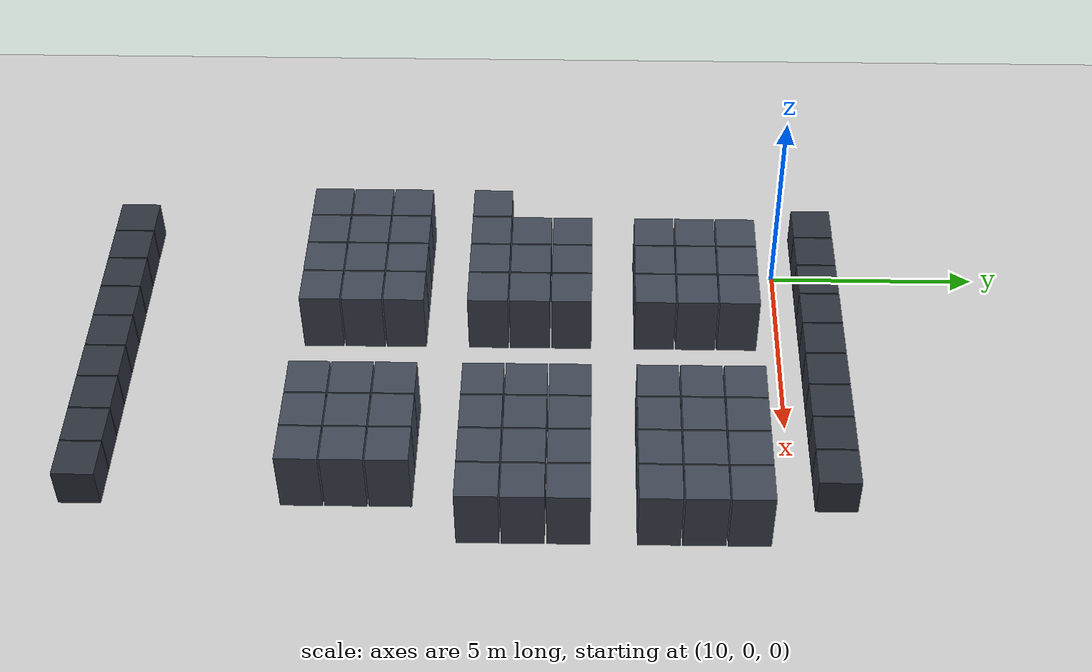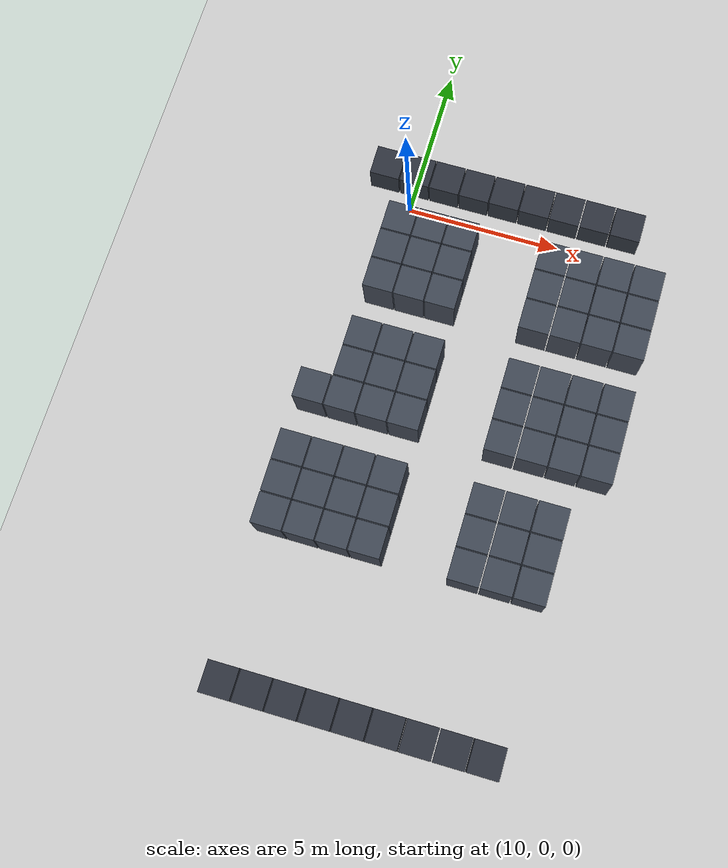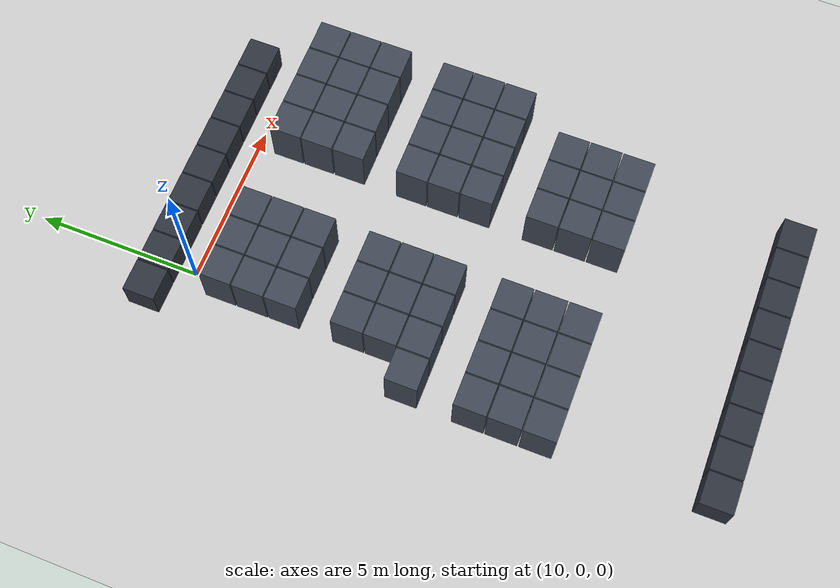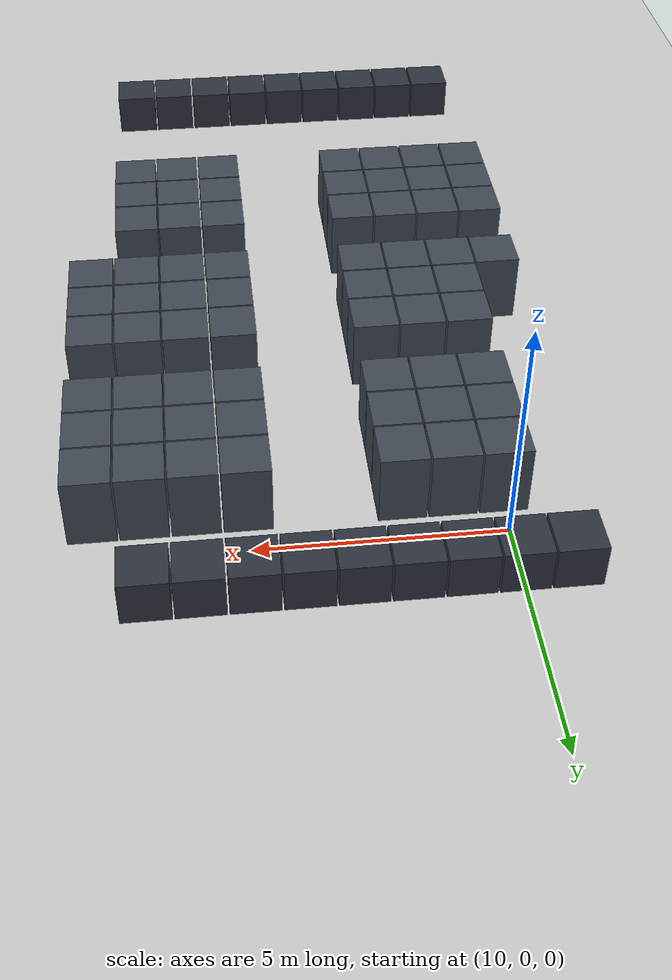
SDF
<sdf version="1.6">
 <world name="fleetx_warehouse">
  <include><uri>model://sun</uri></include>
  <include><uri>model://ground_plane</uri></include>
  <model name="shelf_10_1">
   <static>true</static>
   <pose>10.000 -1.000 0.800 0 0 0</pose>
   <link name="link">
    <collision name="collision"><geometry><box><size>0.960 0.960 1.600</size></box></geometry></collision>
    <visual name="visual">
     <geometry><box><size>0.960 0.960 1.600</size></box></geometry>
     <material><ambient>0.25 0.28 0.33 1</ambient><diffuse>0.25 0.28 0.33 1</diffuse></material>
    </visual>
   </link>
  </model>
  <model name="shelf_11_1">
   <static>true</static>
   <pose>11.000 -1.000 0.800 0 0 0</pose>
   <link name="link">
    <collision name="collision"><geometry><box><size>0.960 0.960 1.600</size></box></geometry></collision>
    <visual name="visual">
     <geometry><box><size>0.960 0.960 1.600</size></box></geometry>
     <material><ambient>0.25 0.28 0.33 1</ambient><diffuse>0.25 0.28 0.33 1</diffuse></material>
    </visual>
   </link>
  </model>
  <model name="shelf_12_1">
   <static>true</static>
   <pose>12.000 -1.000 0.800 0 0 0</pose>
   <link name="link">
    <collision name="collision"><geometry><box><size>0.960 0.960 1.600</size></box></geometry></collision>
    <visual name="visual">
     <geometry><box><size>0.960 0.960 1.600</size></box></geometry>
     <material><ambient>0.25 0.28 0.33 1</ambient><diffuse>0.25 0.28 0.33 1</diffuse></material>
    </visual>
   </link>
  </model>
  <model name="shelf_15_1">
   <static>true</static>
   <pose>15.000 -1.000 0.800 0 0 0</pose>
   <link name="link">
    <collision name="collision"><geometry><box><size>0.960 0.960 1.600</size></box></geometry></collision>
    <visual name="visual">
     <geometry><box><size>0.960 0.960 1.600</size></box></geometry>
     <material><ambient>0.25 0.28 0.33 1</ambient><diffuse>0.25 0.28 0.33 1</diffuse></material>
    </visual>
   </link>
  </model>
  <model name="shelf_16_1">
   <static>true</static>
   <pose>16.000 -1.000 0.800 0 0 0</pose>
   <link name="link">
    <collision name="collision"><geometry><box><size>0.960 0.960 1.600</size></box></geometry></collision>
    <visual name="visual">
     <geometry><box><size>0.960 0.960 1.600</size></box></geometry>
     <material><ambient>0.25 0.28 0.33 1</ambient><diffuse>0.25 0.28 0.33 1</diffuse></material>
    </visual>
   </link>
  </model>
  <model name="shelf_17_1">
   <static>true</static>
   <pose>17.000 -1.000 0.800 0 0 0</pose>
   <link name="link">
    <collision name="collision"><geometry><box><size>0.960 0.960 1.600</size></box></geometry></collision>
    <visual name="visual">
     <geometry><box><size>0.960 0.960 1.600</size></box></geometry>
     <material><ambient>0.25 0.28 0.33 1</ambient><diffuse>0.25 0.28 0.33 1</diffuse></material>
    </visual>
   </link>
  </model>
  <model name="shelf_18_1">
   <static>true</static>
   <pose>18.000 -1.000 0.800 0 0 0</pose>
   <link name="link">
    <collision name="collision"><geometry><box><size>0.960 0.960 1.600</size></box></geometry></collision>
    <visual name="visual">
     <geometry><box><size>0.960 0.960 1.600</size></box></geometry>
     <material><ambient>0.25 0.28 0.33 1</ambient><diffuse>0.25 0.28 0.33 1</diffuse></material>
    </visual>
   </link>
  </model>
  <model name="shelf_10_2">
   <static>true</static>
   <pose>10.000 -2.000 0.800 0 0 0</pose>
   <link name="link">
    <collision name="collision"><geometry><box><size>0.960 0.960 1.600</size></box></geometry></collision>
    <visual name="visual">
     <geometry><box><size>0.960 0.960 1.600</size></box></geometry>
     <material><ambient>0.25 0.28 0.33 1</ambient><diffuse>0.25 0.28 0.33 1</diffuse></material>
    </visual>
   </link>
  </model>
  <model name="shelf_11_2">
   <static>true</static>
   <pose>11.000 -2.000 0.800 0 0 0</pose>
   <link name="link">
    <collision name="collision"><geometry><box><size>0.960 0.960 1.600</size></box></geometry></collision>
    <visual name="visual">
     <geometry><box><size>0.960 0.960 1.600</size></box></geometry>
     <material><ambient>0.25 0.28 0.33 1</ambient><diffuse>0.25 0.28 0.33 1</diffuse></material>
    </visual>
   </link>
  </model>
  <model name="shelf_12_2">
   <static>true</static>
   <pose>12.000 -2.000 0.800 0 0 0</pose>
   <link name="link">
    <collision name="collision"><geometry><box><size>0.960 0.960 1.600</size></box></geometry></collision>
    <visual name="visual">
     <geometry><box><size>0.960 0.960 1.600</size></box></geometry>
     <material><ambient>0.25 0.28 0.33 1</ambient><diffuse>0.25 0.28 0.33 1</diffuse></material>
    </visual>
   </link>
  </model>
  <model name="shelf_15_2">
   <static>true</static>
   <pose>15.000 -2.000 0.800 0 0 0</pose>
   <link name="link">
    <collision name="collision"><geometry><box><size>0.960 0.960 1.600</size></box></geometry></collision>
    <visual name="visual">
     <geometry><box><size>0.960 0.960 1.600</size></box></geometry>
     <material><ambient>0.25 0.28 0.33 1</ambient><diffuse>0.25 0.28 0.33 1</diffuse></material>
    </visual>
   </link>
  </model>
  <model name="shelf_16_2">
   <static>true</static>
   <pose>16.000 -2.000 0.800 0 0 0</pose>
   <link name="link">
    <collision name="collision"><geometry><box><size>0.960 0.960 1.600</size></box></geometry></collision>
    <visual name="visual">
     <geometry><box><size>0.960 0.960 1.600</size></box></geometry>
     <material><ambient>0.25 0.28 0.33 1</ambient><diffuse>0.25 0.28 0.33 1</diffuse></material>
    </visual>
   </link>
  </model>
  <model name="shelf_17_2">
   <static>true</static>
   <pose>17.000 -2.000 0.800 0 0 0</pose>
   <link name="link">
    <collision name="collision"><geometry><box><size>0.960 0.960 1.600</size></box></geometry></collision>
    <visual name="visual">
     <geometry><box><size>0.960 0.960 1.600</size></box></geometry>
     <material><ambient>0.25 0.28 0.33 1</ambient><diffuse>0.25 0.28 0.33 1</diffuse></material>
    </visual>
   </link>
  </model>
  <model name="shelf_18_2">
   <static>true</static>
   <pose>18.000 -2.000 0.800 0 0 0</pose>
   <link name="link">
    <collision name="collision"><geometry><box><size>0.960 0.960 1.600</size></box></geometry></collision>
    <visual name="visual">
     <geometry><box><size>0.960 0.960 1.600</size></box></geometry>
     <material><ambient>0.25 0.28 0.33 1</ambient><diffuse>0.25 0.28 0.33 1</diffuse></material>
    </visual>
   </link>
  </model>
  <model name="shelf_10_3">
   <static>true</static>
   <pose>10.000 -3.000 0.800 0 0 0</pose>
   <link name="link">
    <collision name="collision"><geometry><box><size>0.960 0.960 1.600</size></box></geometry></collision>
    <visual name="visual">
     <geometry><box><size>0.960 0.960 1.600</size></box></geometry>
     <material><ambient>0.25 0.28 0.33 1</ambient><diffuse>0.25 0.28 0.33 1</diffuse></material>
    </visual>
   </link>
  </model>
  <model name="shelf_11_3">
   <static>true</static>
   <pose>11.000 -3.000 0.800 0 0 0</pose>
   <link name="link">
    <collision name="collision"><geometry><box><size>0.960 0.960 1.600</size></box></geometry></collision>
    <visual name="visual">
     <geometry><box><size>0.960 0.960 1.600</size></box></geometry>
     <material><ambient>0.25 0.28 0.33 1</ambient><diffuse>0.25 0.28 0.33 1</diffuse></material>
    </visual>
   </link>
  </model>
  <model name="shelf_12_3">
   <static>true</static>
   <pose>12.000 -3.000 0.800 0 0 0</pose>
   <link name="link">
    <collision name="collision"><geometry><box><size>0.960 0.960 1.600</size></box></geometry></collision>
    <visual name="visual">
     <geometry><box><size>0.960 0.960 1.600</size></box></geometry>
     <material><ambient>0.25 0.28 0.33 1</ambient><diffuse>0.25 0.28 0.33 1</diffuse></material>
    </visual>
   </link>
  </model>
  <model name="shelf_15_3">
   <static>true</static>
   <pose>15.000 -3.000 0.800 0 0 0</pose>
   <link name="link">
    <collision name="collision"><geometry><box><size>0.960 0.960 1.600</size></box></geometry></collision>
    <visual name="visual">
     <geometry><box><size>0.960 0.960 1.600</size></box></geometry>
     <material><ambient>0.25 0.28 0.33 1</ambient><diffuse>0.25 0.28 0.33 1</diffuse></material>
    </visual>
   </link>
  </model>
  <model name="shelf_16_3">
   <static>true</static>
   <pose>16.000 -3.000 0.800 0 0 0</pose>
   <link name="link">
    <collision name="collision"><geometry><box><size>0.960 0.960 1.600</size></box></geometry></collision>
    <visual name="visual">
     <geometry><box><size>0.960 0.960 1.600</size></box></geometry>
     <material><ambient>0.25 0.28 0.33 1</ambient><diffuse>0.25 0.28 0.33 1</diffuse></material>
    </visual>
   </link>
  </model>
  <model name="shelf_17_3">
   <static>true</static>
   <pose>17.000 -3.000 0.800 0 0 0</pose>
   <link name="link">
    <collision name="collision"><geometry><box><size>0.960 0.960 1.600</size></box></geometry></collision>
    <visual name="visual">
     <geometry><box><size>0.960 0.960 1.600</size></box></geometry>
     <material><ambient>0.25 0.28 0.33 1</ambient><diffuse>0.25 0.28 0.33 1</diffuse></material>
    </visual>
   </link>
  </model>
  <model name="shelf_18_3">
   <static>true</static>
   <pose>18.000 -3.000 0.800 0 0 0</pose>
   <link name="link">
    <collision name="collision"><geometry><box><size>0.960 0.960 1.600</size></box></geometry></collision>
    <visual name="visual">
     <geometry><box><size>0.960 0.960 1.600</size></box></geometry>
     <material><ambient>0.25 0.28 0.33 1</ambient><diffuse>0.25 0.28 0.33 1</diffuse></material>
    </visual>
   </link>
  </model>
  <model name="shelf_10_5">
   <static>true</static>
   <pose>10.000 -5.000 0.800 0 0 0</pose>
   <link name="link">
    <collision name="collision"><geometry><box><size>0.960 0.960 1.600</size></box></geometry></collision>
    <visual name="visual">
     <geometry><box><size>0.960 0.960 1.600</size></box></geometry>
     <material><ambient>0.25 0.28 0.33 1</ambient><diffuse>0.25 0.28 0.33 1</diffuse></material>
    </visual>
   </link>
  </model>
  <model name="shelf_11_5">
   <static>true</static>
   <pose>11.000 -5.000 0.800 0 0 0</pose>
   <link name="link">
    <collision name="collision"><geometry><box><size>0.960 0.960 1.600</size></box></geometry></collision>
    <visual name="visual">
     <geometry><box><size>0.960 0.960 1.600</size></box></geometry>
     <material><ambient>0.25 0.28 0.33 1</ambient><diffuse>0.25 0.28 0.33 1</diffuse></material>
    </visual>
   </link>
  </model>
  <model name="shelf_12_5">
   <static>true</static>
   <pose>12.000 -5.000 0.800 0 0 0</pose>
   <link name="link">
    <collision name="collision"><geometry><box><size>0.960 0.960 1.600</size></box></geometry></collision>
    <visual name="visual">
     <geometry><box><size>0.960 0.960 1.600</size></box></geometry>
     <material><ambient>0.25 0.28 0.33 1</ambient><diffuse>0.25 0.28 0.33 1</diffuse></material>
    </visual>
   </link>
  </model>
  <model name="shelf_15_5">
   <static>true</static>
   <pose>15.000 -5.000 0.800 0 0 0</pose>
   <link name="link">
    <collision name="collision"><geometry><box><size>0.960 0.960 1.600</size></box></geometry></collision>
    <visual name="visual">
     <geometry><box><size>0.960 0.960 1.600</size></box></geometry>
     <material><ambient>0.25 0.28 0.33 1</ambient><diffuse>0.25 0.28 0.33 1</diffuse></material>
    </visual>
   </link>
  </model>
  <model name="shelf_16_5">
   <static>true</static>
   <pose>16.000 -5.000 0.800 0 0 0</pose>
   <link name="link">
    <collision name="collision"><geometry><box><size>0.960 0.960 1.600</size></box></geometry></collision>
    <visual name="visual">
     <geometry><box><size>0.960 0.960 1.600</size></box></geometry>
     <material><ambient>0.25 0.28 0.33 1</ambient><diffuse>0.25 0.28 0.33 1</diffuse></material>
    </visual>
   </link>
  </model>
  <model name="shelf_17_5">
   <static>true</static>
   <pose>17.000 -5.000 0.800 0 0 0</pose>
   <link name="link">
    <collision name="collision"><geometry><box><size>0.960 0.960 1.600</size></box></geometry></collision>
    <visual name="visual">
     <geometry><box><size>0.960 0.960 1.600</size></box></geometry>
     <material><ambient>0.25 0.28 0.33 1</ambient><diffuse>0.25 0.28 0.33 1</diffuse></material>
    </visual>
   </link>
  </model>
  <model name="shelf_18_5">
   <static>true</static>
   <pose>18.000 -5.000 0.800 0 0 0</pose>
   <link name="link">
    <collision name="collision"><geometry><box><size>0.960 0.960 1.600</size></box></geometry></collision>
    <visual name="visual">
     <geometry><box><size>0.960 0.960 1.600</size></box></geometry>
     <material><ambient>0.25 0.28 0.33 1</ambient><diffuse>0.25 0.28 0.33 1</diffuse></material>
    </visual>
   </link>
  </model>
  <model name="shelf_10_6">
   <static>true</static>
   <pose>10.000 -6.000 0.800 0 0 0</pose>
   <link name="link">
    <collision name="collision"><geometry><box><size>0.960 0.960 1.600</size></box></geometry></collision>
    <visual name="visual">
     <geometry><box><size>0.960 0.960 1.600</size></box></geometry>
     <material><ambient>0.25 0.28 0.33 1</ambient><diffuse>0.25 0.28 0.33 1</diffuse></material>
    </visual>
   </link>
  </model>
  <model name="shelf_11_6">
   <static>true</static>
   <pose>11.000 -6.000 0.800 0 0 0</pose>
   <link name="link">
    <collision name="collision"><geometry><box><size>0.960 0.960 1.600</size></box></geometry></collision>
    <visual name="visual">
     <geometry><box><size>0.960 0.960 1.600</size></box></geometry>
     <material><ambient>0.25 0.28 0.33 1</ambient><diffuse>0.25 0.28 0.33 1</diffuse></material>
    </visual>
   </link>
  </model>
  <model name="shelf_12_6">
   <static>true</static>
   <pose>12.000 -6.000 0.800 0 0 0</pose>
   <link name="link">
    <collision name="collision"><geometry><box><size>0.960 0.960 1.600</size></box></geometry></collision>
    <visual name="visual">
     <geometry><box><size>0.960 0.960 1.600</size></box></geometry>
     <material><ambient>0.25 0.28 0.33 1</ambient><diffuse>0.25 0.28 0.33 1</diffuse></material>
    </visual>
   </link>
  </model>
  <model name="shelf_15_6">
   <static>true</static>
   <pose>15.000 -6.000 0.800 0 0 0</pose>
   <link name="link">
    <collision name="collision"><geometry><box><size>0.960 0.960 1.600</size></box></geometry></collision>
    <visual name="visual">
     <geometry><box><size>0.960 0.960 1.600</size></box></geometry>
     <material><ambient>0.25 0.28 0.33 1</ambient><diffuse>0.25 0.28 0.33 1</diffuse></material>
    </visual>
   </link>
  </model>
  <model name="shelf_16_6">
   <static>true</static>
   <pose>16.000 -6.000 0.800 0 0 0</pose>
   <link name="link">
    <collision name="collision"><geometry><box><size>0.960 0.960 1.600</size></box></geometry></collision>
    <visual name="visual">
     <geometry><box><size>0.960 0.960 1.600</size></box></geometry>
     <material><ambient>0.25 0.28 0.33 1</ambient><diffuse>0.25 0.28 0.33 1</diffuse></material>
    </visual>
   </link>
  </model>
  <model name="shelf_17_6">
   <static>true</static>
   <pose>17.000 -6.000 0.800 0 0 0</pose>
   <link name="link">
    <collision name="collision"><geometry><box><size>0.960 0.960 1.600</size></box></geometry></collision>
    <visual name="visual">
     <geometry><box><size>0.960 0.960 1.600</size></box></geometry>
     <material><ambient>0.25 0.28 0.33 1</ambient><diffuse>0.25 0.28 0.33 1</diffuse></material>
    </visual>
   </link>
  </model>
  <model name="shelf_18_6">
   <static>true</static>
   <pose>18.000 -6.000 0.800 0 0 0</pose>
   <link name="link">
    <collision name="collision"><geometry><box><size>0.960 0.960 1.600</size></box></geometry></collision>
    <visual name="visual">
     <geometry><box><size>0.960 0.960 1.600</size></box></geometry>
     <material><ambient>0.25 0.28 0.33 1</ambient><diffuse>0.25 0.28 0.33 1</diffuse></material>
    </visual>
   </link>
  </model>
  <model name="shelf_9_7">
   <static>true</static>
   <pose>9.000 -7.000 0.800 0 0 0</pose>
   <link name="link">
    <collision name="collision"><geometry><box><size>0.960 0.960 1.600</size></box></geometry></collision>
    <visual name="visual">
     <geometry><box><size>0.960 0.960 1.600</size></box></geometry>
     <material><ambient>0.25 0.28 0.33 1</ambient><diffuse>0.25 0.28 0.33 1</diffuse></material>
    </visual>
   </link>
  </model>
  <model name="shelf_10_7">
   <static>true</static>
   <pose>10.000 -7.000 0.800 0 0 0</pose>
   <link name="link">
    <collision name="collision"><geometry><box><size>0.960 0.960 1.600</size></box></geometry></collision>
    <visual name="visual">
     <geometry><box><size>0.960 0.960 1.600</size></box></geometry>
     <material><ambient>0.25 0.28 0.33 1</ambient><diffuse>0.25 0.28 0.33 1</diffuse></material>
    </visual>
   </link>
  </model>
  <model name="shelf_11_7">
   <static>true</static>
   <pose>11.000 -7.000 0.800 0 0 0</pose>
   <link name="link">
    <collision name="collision"><geometry><box><size>0.960 0.960 1.600</size></box></geometry></collision>
    <visual name="visual">
     <geometry><box><size>0.960 0.960 1.600</size></box></geometry>
     <material><ambient>0.25 0.28 0.33 1</ambient><diffuse>0.25 0.28 0.33 1</diffuse></material>
    </visual>
   </link>
  </model>
  <model name="shelf_12_7">
   <static>true</static>
   <pose>12.000 -7.000 0.800 0 0 0</pose>
   <link name="link">
    <collision name="collision"><geometry><box><size>0.960 0.960 1.600</size></box></geometry></collision>
    <visual name="visual">
     <geometry><box><size>0.960 0.960 1.600</size></box></geometry>
     <material><ambient>0.25 0.28 0.33 1</ambient><diffuse>0.25 0.28 0.33 1</diffuse></material>
    </visual>
   </link>
  </model>
  <model name="shelf_15_7">
   <static>true</static>
   <pose>15.000 -7.000 0.800 0 0 0</pose>
   <link name="link">
    <collision name="collision"><geometry><box><size>0.960 0.960 1.600</size></box></geometry></collision>
    <visual name="visual">
     <geometry><box><size>0.960 0.960 1.600</size></box></geometry>
     <material><ambient>0.25 0.28 0.33 1</ambient><diffuse>0.25 0.28 0.33 1</diffuse></material>
    </visual>
   </link>
  </model>
  <model name="shelf_16_7">
   <static>true</static>
   <pose>16.000 -7.000 0.800 0 0 0</pose>
   <link name="link">
    <collision name="collision"><geometry><box><size>0.960 0.960 1.600</size></box></geometry></collision>
    <visual name="visual">
     <geometry><box><size>0.960 0.960 1.600</size></box></geometry>
     <material><ambient>0.25 0.28 0.33 1</ambient><diffuse>0.25 0.28 0.33 1</diffuse></material>
    </visual>
   </link>
  </model>
  <model name="shelf_17_7">
   <static>true</static>
   <pose>17.000 -7.000 0.800 0 0 0</pose>
   <link name="link">
    <collision name="collision"><geometry><box><size>0.960 0.960 1.600</size></box></geometry></collision>
    <visual name="visual">
     <geometry><box><size>0.960 0.960 1.600</size></box></geometry>
     <material><ambient>0.25 0.28 0.33 1</ambient><diffuse>0.25 0.28 0.33 1</diffuse></material>
    </visual>
   </link>
  </model>
  <model name="shelf_18_7">
   <static>true</static>
   <pose>18.000 -7.000 0.800 0 0 0</pose>
   <link name="link">
    <collision name="collision"><geometry><box><size>0.960 0.960 1.600</size></box></geometry></collision>
    <visual name="visual">
     <geometry><box><size>0.960 0.960 1.600</size></box></geometry>
     <material><ambient>0.25 0.28 0.33 1</ambient><diffuse>0.25 0.28 0.33 1</diffuse></material>
    </visual>
   </link>
  </model>
  <model name="shelf_9_9">
   <static>true</static>
   <pose>9.000 -9.000 0.800 0 0 0</pose>
   <link name="link">
    <collision name="collision"><geometry><box><size>0.960 0.960 1.600</size></box></geometry></collision>
    <visual name="visual">
     <geometry><box><size>0.960 0.960 1.600</size></box></geometry>
     <material><ambient>0.25 0.28 0.33 1</ambient><diffuse>0.25 0.28 0.33 1</diffuse></material>
    </visual>
   </link>
  </model>
  <model name="shelf_10_9">
   <static>true</static>
   <pose>10.000 -9.000 0.800 0 0 0</pose>
   <link name="link">
    <collision name="collision"><geometry><box><size>0.960 0.960 1.600</size></box></geometry></collision>
    <visual name="visual">
     <geometry><box><size>0.960 0.960 1.600</size></box></geometry>
     <material><ambient>0.25 0.28 0.33 1</ambient><diffuse>0.25 0.28 0.33 1</diffuse></material>
    </visual>
   </link>
  </model>
  <model name="shelf_11_9">
   <static>true</static>
   <pose>11.000 -9.000 0.800 0 0 0</pose>
   <link name="link">
    <collision name="collision"><geometry><box><size>0.960 0.960 1.600</size></box></geometry></collision>
    <visual name="visual">
     <geometry><box><size>0.960 0.960 1.600</size></box></geometry>
     <material><ambient>0.25 0.28 0.33 1</ambient><diffuse>0.25 0.28 0.33 1</diffuse></material>
    </visual>
   </link>
  </model>
  <model name="shelf_12_9">
   <static>true</static>
   <pose>12.000 -9.000 0.800 0 0 0</pose>
   <link name="link">
    <collision name="collision"><geometry><box><size>0.960 0.960 1.600</size></box></geometry></collision>
    <visual name="visual">
     <geometry><box><size>0.960 0.960 1.600</size></box></geometry>
     <material><ambient>0.25 0.28 0.33 1</ambient><diffuse>0.25 0.28 0.33 1</diffuse></material>
    </visual>
   </link>
  </model>
  <model name="shelf_15_9">
   <static>true</static>
   <pose>15.000 -9.000 0.800 0 0 0</pose>
   <link name="link">
    <collision name="collision"><geometry><box><size>0.960 0.960 1.600</size></box></geometry></collision>
    <visual name="visual">
     <geometry><box><size>0.960 0.960 1.600</size></box></geometry>
     <material><ambient>0.25 0.28 0.33 1</ambient><diffuse>0.25 0.28 0.33 1</diffuse></material>
    </visual>
   </link>
  </model>
  <model name="shelf_16_9">
   <static>true</static>
   <pose>16.000 -9.000 0.800 0 0 0</pose>
   <link name="link">
    <collision name="collision"><geometry><box><size>0.960 0.960 1.600</size></box></geometry></collision>
    <visual name="visual">
     <geometry><box><size>0.960 0.960 1.600</size></box></geometry>
     <material><ambient>0.25 0.28 0.33 1</ambient><diffuse>0.25 0.28 0.33 1</diffuse></material>
    </visual>
   </link>
  </model>
  <model name="shelf_17_9">
   <static>true</static>
   <pose>17.000 -9.000 0.800 0 0 0</pose>
   <link name="link">
    <collision name="collision"><geometry><box><size>0.960 0.960 1.600</size></box></geometry></collision>
    <visual name="visual">
     <geometry><box><size>0.960 0.960 1.600</size></box></geometry>
     <material><ambient>0.25 0.28 0.33 1</ambient><diffuse>0.25 0.28 0.33 1</diffuse></material>
    </visual>
   </link>
  </model>
  <model name="shelf_9_10">
   <static>true</static>
   <pose>9.000 -10.000 0.800 0 0 0</pose>
   <link name="link">
    <collision name="collision"><geometry><box><size>0.960 0.960 1.600</size></box></geometry></collision>
    <visual name="visual">
     <geometry><box><size>0.960 0.960 1.600</size></box></geometry>
     <material><ambient>0.25 0.28 0.33 1</ambient><diffuse>0.25 0.28 0.33 1</diffuse></material>
    </visual>
   </link>
  </model>
  <model name="shelf_10_10">
   <static>true</static>
   <pose>10.000 -10.000 0.800 0 0 0</pose>
   <link name="link">
    <collision name="collision"><geometry><box><size>0.960 0.960 1.600</size></box></geometry></collision>
    <visual name="visual">
     <geometry><box><size>0.960 0.960 1.600</size></box></geometry>
     <material><ambient>0.25 0.28 0.33 1</ambient><diffuse>0.25 0.28 0.33 1</diffuse></material>
    </visual>
   </link>
  </model>
  <model name="shelf_11_10">
   <static>true</static>
   <pose>11.000 -10.000 0.800 0 0 0</pose>
   <link name="link">
    <collision name="collision"><geometry><box><size>0.960 0.960 1.600</size></box></geometry></collision>
    <visual name="visual">
     <geometry><box><size>0.960 0.960 1.600</size></box></geometry>
     <material><ambient>0.25 0.28 0.33 1</ambient><diffuse>0.25 0.28 0.33 1</diffuse></material>
    </visual>
   </link>
  </model>
  <model name="shelf_12_10">
   <static>true</static>
   <pose>12.000 -10.000 0.800 0 0 0</pose>
   <link name="link">
    <collision name="collision"><geometry><box><size>0.960 0.960 1.600</size></box></geometry></collision>
    <visual name="visual">
     <geometry><box><size>0.960 0.960 1.600</size></box></geometry>
     <material><ambient>0.25 0.28 0.33 1</ambient><diffuse>0.25 0.28 0.33 1</diffuse></material>
    </visual>
   </link>
  </model>
  <model name="shelf_15_10">
   <static>true</static>
   <pose>15.000 -10.000 0.800 0 0 0</pose>
   <link name="link">
    <collision name="collision"><geometry><box><size>0.960 0.960 1.600</size></box></geometry></collision>
    <visual name="visual">
     <geometry><box><size>0.960 0.960 1.600</size></box></geometry>
     <material><ambient>0.25 0.28 0.33 1</ambient><diffuse>0.25 0.28 0.33 1</diffuse></material>
    </visual>
   </link>
  </model>
  <model name="shelf_16_10">
   <static>true</static>
   <pose>16.000 -10.000 0.800 0 0 0</pose>
   <link name="link">
    <collision name="collision"><geometry><box><size>0.960 0.960 1.600</size></box></geometry></collision>
    <visual name="visual">
     <geometry><box><size>0.960 0.960 1.600</size></box></geometry>
     <material><ambient>0.25 0.28 0.33 1</ambient><diffuse>0.25 0.28 0.33 1</diffuse></material>
    </visual>
   </link>
  </model>
  <model name="shelf_17_10">
   <static>true</static>
   <pose>17.000 -10.000 0.800 0 0 0</pose>
   <link name="link">
    <collision name="collision"><geometry><box><size>0.960 0.960 1.600</size></box></geometry></collision>
    <visual name="visual">
     <geometry><box><size>0.960 0.960 1.600</size></box></geometry>
     <material><ambient>0.25 0.28 0.33 1</ambient><diffuse>0.25 0.28 0.33 1</diffuse></material>
    </visual>
   </link>
  </model>
  <model name="shelf_9_11">
   <static>true</static>
   <pose>9.000 -11.000 0.800 0 0 0</pose>
   <link name="link">
    <collision name="collision"><geometry><box><size>0.960 0.960 1.600</size></box></geometry></collision>
    <visual name="visual">
     <geometry><box><size>0.960 0.960 1.600</size></box></geometry>
     <material><ambient>0.25 0.28 0.33 1</ambient><diffuse>0.25 0.28 0.33 1</diffuse></material>
    </visual>
   </link>
  </model>
  <model name="shelf_10_11">
   <static>true</static>
   <pose>10.000 -11.000 0.800 0 0 0</pose>
   <link name="link">
    <collision name="collision"><geometry><box><size>0.960 0.960 1.600</size></box></geometry></collision>
    <visual name="visual">
     <geometry><box><size>0.960 0.960 1.600</size></box></geometry>
     <material><ambient>0.25 0.28 0.33 1</ambient><diffuse>0.25 0.28 0.33 1</diffuse></material>
    </visual>
   </link>
  </model>
  <model name="shelf_11_11">
   <static>true</static>
   <pose>11.000 -11.000 0.800 0 0 0</pose>
   <link name="link">
    <collision name="collision"><geometry><box><size>0.960 0.960 1.600</size></box></geometry></collision>
    <visual name="visual">
     <geometry><box><size>0.960 0.960 1.600</size></box></geometry>
     <material><ambient>0.25 0.28 0.33 1</ambient><diffuse>0.25 0.28 0.33 1</diffuse></material>
    </visual>
   </link>
  </model>
  <model name="shelf_12_11">
   <static>true</static>
   <pose>12.000 -11.000 0.800 0 0 0</pose>
   <link name="link">
    <collision name="collision"><geometry><box><size>0.960 0.960 1.600</size></box></geometry></collision>
    <visual name="visual">
     <geometry><box><size>0.960 0.960 1.600</size></box></geometry>
     <material><ambient>0.25 0.28 0.33 1</ambient><diffuse>0.25 0.28 0.33 1</diffuse></material>
    </visual>
   </link>
  </model>
  <model name="shelf_15_11">
   <static>true</static>
   <pose>15.000 -11.000 0.800 0 0 0</pose>
   <link name="link">
    <collision name="collision"><geometry><box><size>0.960 0.960 1.600</size></box></geometry></collision>
    <visual name="visual">
     <geometry><box><size>0.960 0.960 1.600</size></box></geometry>
     <material><ambient>0.25 0.28 0.33 1</ambient><diffuse>0.25 0.28 0.33 1</diffuse></material>
    </visual>
   </link>
  </model>
  <model name="shelf_16_11">
   <static>true</static>
   <pose>16.000 -11.000 0.800 0 0 0</pose>
   <link name="link">
    <collision name="collision"><geometry><box><size>0.960 0.960 1.600</size></box></geometry></collision>
    <visual name="visual">
     <geometry><box><size>0.960 0.960 1.600</size></box></geometry>
     <material><ambient>0.25 0.28 0.33 1</ambient><diffuse>0.25 0.28 0.33 1</diffuse></material>
    </visual>
   </link>
  </model>
  <model name="shelf_17_11">
   <static>true</static>
   <pose>17.000 -11.000 0.800 0 0 0</pose>
   <link name="link">
    <collision name="collision"><geometry><box><size>0.960 0.960 1.600</size></box></geometry></collision>
    <visual name="visual">
     <geometry><box><size>0.960 0.960 1.600</size></box></geometry>
     <material><ambient>0.25 0.28 0.33 1</ambient><diffuse>0.25 0.28 0.33 1</diffuse></material>
    </visual>
   </link>
  </model>
  <model name="wall_n_9">
   <static>true</static>
   <pose>9.000 1.000 0.500 0 0 0</pose>
   <link name="link">
    <collision name="collision"><geometry><box><size>0.960 0.960 1.000</size></box></geometry></collision>
    <visual name="visual">
     <geometry><box><size>0.960 0.960 1.000</size></box></geometry>
     <material><ambient>0.18 0.20 0.24 1</ambient><diffuse>0.18 0.20 0.24 1</diffuse></material>
    </visual>
   </link>
  </model>
  <model name="wall_s_9">
   <static>true</static>
   <pose>9.000 -16.000 0.500 0 0 0</pose>
   <link name="link">
    <collision name="collision"><geometry><box><size>0.960 0.960 1.000</size></box></geometry></collision>
    <visual name="visual">
     <geometry><box><size>0.960 0.960 1.000</size></box></geometry>
     <material><ambient>0.18 0.20 0.24 1</ambient><diffuse>0.18 0.20 0.24 1</diffuse></material>
    </visual>
   </link>
  </model>
  <model name="wall_n_10">
   <static>true</static>
   <pose>10.000 1.000 0.500 0 0 0</pose>
   <link name="link">
    <collision name="collision"><geometry><box><size>0.960 0.960 1.000</size></box></geometry></collision>
    <visual name="visual">
     <geometry><box><size>0.960 0.960 1.000</size></box></geometry>
     <material><ambient>0.18 0.20 0.24 1</ambient><diffuse>0.18 0.20 0.24 1</diffuse></material>
    </visual>
   </link>
  </model>
  <model name="wall_s_10">
   <static>true</static>
   <pose>10.000 -16.000 0.500 0 0 0</pose>
   <link name="link">
    <collision name="collision"><geometry><box><size>0.960 0.960 1.000</size></box></geometry></collision>
    <visual name="visual">
     <geometry><box><size>0.960 0.960 1.000</size></box></geometry>
     <material><ambient>0.18 0.20 0.24 1</ambient><diffuse>0.18 0.20 0.24 1</diffuse></material>
    </visual>
   </link>
  </model>
  <model name="wall_n_11">
   <static>true</static>
   <pose>11.000 1.000 0.500 0 0 0</pose>
   <link name="link">
    <collision name="collision"><geometry><box><size>0.960 0.960 1.000</size></box></geometry></collision>
    <visual name="visual">
     <geometry><box><size>0.960 0.960 1.000</size></box></geometry>
     <material><ambient>0.18 0.20 0.24 1</ambient><diffuse>0.18 0.20 0.24 1</diffuse></material>
    </visual>
   </link>
  </model>
  <model name="wall_s_11">
   <static>true</static>
   <pose>11.000 -16.000 0.500 0 0 0</pose>
   <link name="link">
    <collision name="collision"><geometry><box><size>0.960 0.960 1.000</size></box></geometry></collision>
    <visual name="visual">
     <geometry><box><size>0.960 0.960 1.000</size></box></geometry>
     <material><ambient>0.18 0.20 0.24 1</ambient><diffuse>0.18 0.20 0.24 1</diffuse></material>
    </visual>
   </link>
  </model>
  <model name="wall_n_12">
   <static>true</static>
   <pose>12.000 1.000 0.500 0 0 0</pose>
   <link name="link">
    <collision name="collision"><geometry><box><size>0.960 0.960 1.000</size></box></geometry></collision>
    <visual name="visual">
     <geometry><box><size>0.960 0.960 1.000</size></box></geometry>
     <material><ambient>0.18 0.20 0.24 1</ambient><diffuse>0.18 0.20 0.24 1</diffuse></material>
    </visual>
   </link>
  </model>
  <model name="wall_s_12">
   <static>true</static>
   <pose>12.000 -16.000 0.500 0 0 0</pose>
   <link name="link">
    <collision name="collision"><geometry><box><size>0.960 0.960 1.000</size></box></geometry></collision>
    <visual name="visual">
     <geometry><box><size>0.960 0.960 1.000</size></box></geometry>
     <material><ambient>0.18 0.20 0.24 1</ambient><diffuse>0.18 0.20 0.24 1</diffuse></material>
    </visual>
   </link>
  </model>
  <model name="wall_n_13">
   <static>true</static>
   <pose>13.000 1.000 0.500 0 0 0</pose>
   <link name="link">
    <collision name="collision"><geometry><box><size>0.960 0.960 1.000</size></box></geometry></collision>
    <visual name="visual">
     <geometry><box><size>0.960 0.960 1.000</size></box></geometry>
     <material><ambient>0.18 0.20 0.24 1</ambient><diffuse>0.18 0.20 0.24 1</diffuse></material>
    </visual>
   </link>
  </model>
  <model name="wall_s_13">
   <static>true</static>
   <pose>13.000 -16.000 0.500 0 0 0</pose>
   <link name="link">
    <collision name="collision"><geometry><box><size>0.960 0.960 1.000</size></box></geometry></collision>
    <visual name="visual">
     <geometry><box><size>0.960 0.960 1.000</size></box></geometry>
     <material><ambient>0.18 0.20 0.24 1</ambient><diffuse>0.18 0.20 0.24 1</diffuse></material>
    </visual>
   </link>
  </model>
  <model name="wall_n_14">
   <static>true</static>
   <pose>14.000 1.000 0.500 0 0 0</pose>
   <link name="link">
    <collision name="collision"><geometry><box><size>0.960 0.960 1.000</size></box></geometry></collision>
    <visual name="visual">
     <geometry><box><size>0.960 0.960 1.000</size></box></geometry>
     <material><ambient>0.18 0.20 0.24 1</ambient><diffuse>0.18 0.20 0.24 1</diffuse></material>
    </visual>
   </link>
  </model>
  <model name="wall_s_14">
   <static>true</static>
   <pose>14.000 -16.000 0.500 0 0 0</pose>
   <link name="link">
    <collision name="collision"><geometry><box><size>0.960 0.960 1.000</size></box></geometry></collision>
    <visual name="visual">
     <geometry><box><size>0.960 0.960 1.000</size></box></geometry>
     <material><ambient>0.18 0.20 0.24 1</ambient><diffuse>0.18 0.20 0.24 1</diffuse></material>
    </visual>
   </link>
  </model>
  <model name="wall_n_15">
   <static>true</static>
   <pose>15.000 1.000 0.500 0 0 0</pose>
   <link name="link">
    <collision name="collision"><geometry><box><size>0.960 0.960 1.000</size></box></geometry></collision>
    <visual name="visual">
     <geometry><box><size>0.960 0.960 1.000</size></box></geometry>
     <material><ambient>0.18 0.20 0.24 1</ambient><diffuse>0.18 0.20 0.24 1</diffuse></material>
    </visual>
   </link>
  </model>
  <model name="wall_s_15">
   <static>true</static>
   <pose>15.000 -16.000 0.500 0 0 0</pose>
   <link name="link">
    <collision name="collision"><geometry><box><size>0.960 0.960 1.000</size></box></geometry></collision>
    <visual name="visual">
     <geometry><box><size>0.960 0.960 1.000</size></box></geometry>
     <material><ambient>0.18 0.20 0.24 1</ambient><diffuse>0.18 0.20 0.24 1</diffuse></material>
    </visual>
   </link>
  </model>
  <model name="wall_n_16">
   <static>true</static>
   <pose>16.000 1.000 0.500 0 0 0</pose>
   <link name="link">
    <collision name="collision"><geometry><box><size>0.960 0.960 1.000</size></box></geometry></collision>
    <visual name="visual">
     <geometry><box><size>0.960 0.960 1.000</size></box></geometry>
     <material><ambient>0.18 0.20 0.24 1</ambient><diffuse>0.18 0.20 0.24 1</diffuse></material>
    </visual>
   </link>
  </model>
  <model name="wall_s_16">
   <static>true</static>
   <pose>16.000 -16.000 0.500 0 0 0</pose>
   <link name="link">
    <collision name="collision"><geometry><box><size>0.960 0.960 1.000</size></box></geometry></collision>
    <visual name="visual">
     <geometry><box><size>0.960 0.960 1.000</size></box></geometry>
     <material><ambient>0.18 0.20 0.24 1</ambient><diffuse>0.18 0.20 0.24 1</diffuse></material>
    </visual>
   </link>
  </model>
  <model name="wall_n_17">
   <static>true</static>
   <pose>17.000 1.000 0.500 0 0 0</pose>
   <link name="link">
    <collision name="collision"><geometry><box><size>0.960 0.960 1.000</size></box></geometry></collision>
    <visual name="visual">
     <geometry><box><size>0.960 0.960 1.000</size></box></geometry>
     <material><ambient>0.18 0.20 0.24 1</ambient><diffuse>0.18 0.20 0.24 1</diffuse></material>
    </visual>
   </link>
  </model>
  <model name="wall_s_17">
   <static>true</static>
   <pose>17.000 -16.000 0.500 0 0 0</pose>
   <link name="link">
    <collision name="collision"><geometry><box><size>0.960 0.960 1.000</size></box></geometry></collision>
    <visual name="visual">
     <geometry><box><size>0.960 0.960 1.000</size></box></geometry>
     <material><ambient>0.18 0.20 0.24 1</ambient><diffuse>0.18 0.20 0.24 1</diffuse></material>
    </visual>
   </link>
  </model>
 </world>
</sdf>
